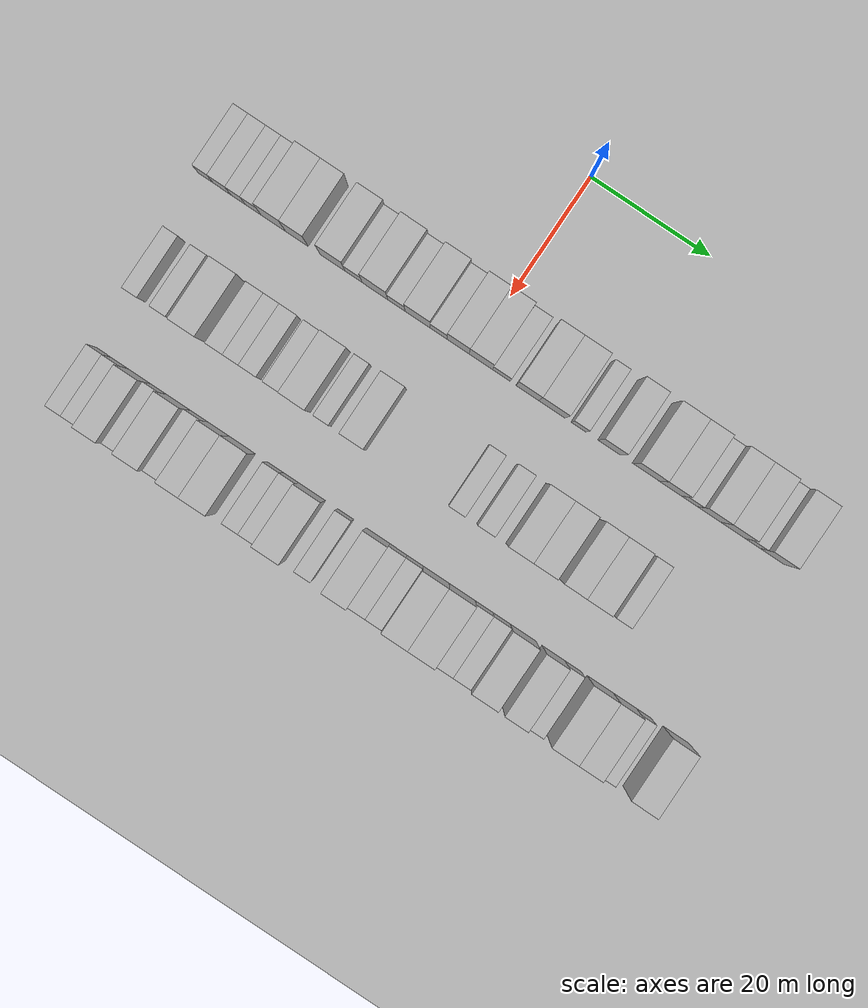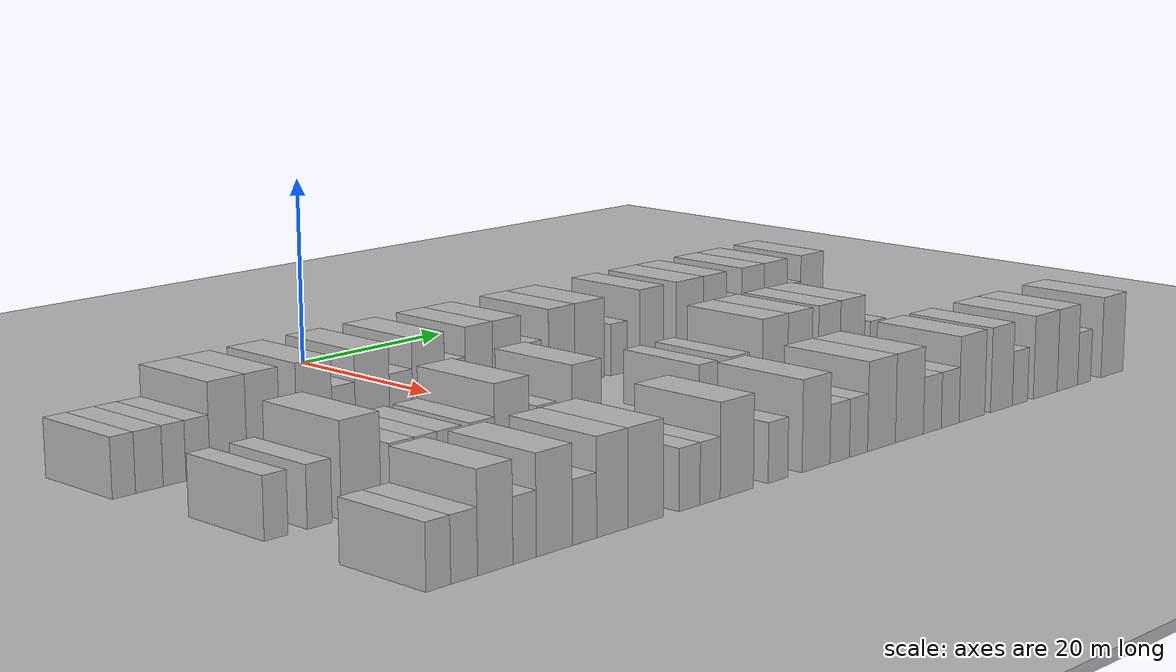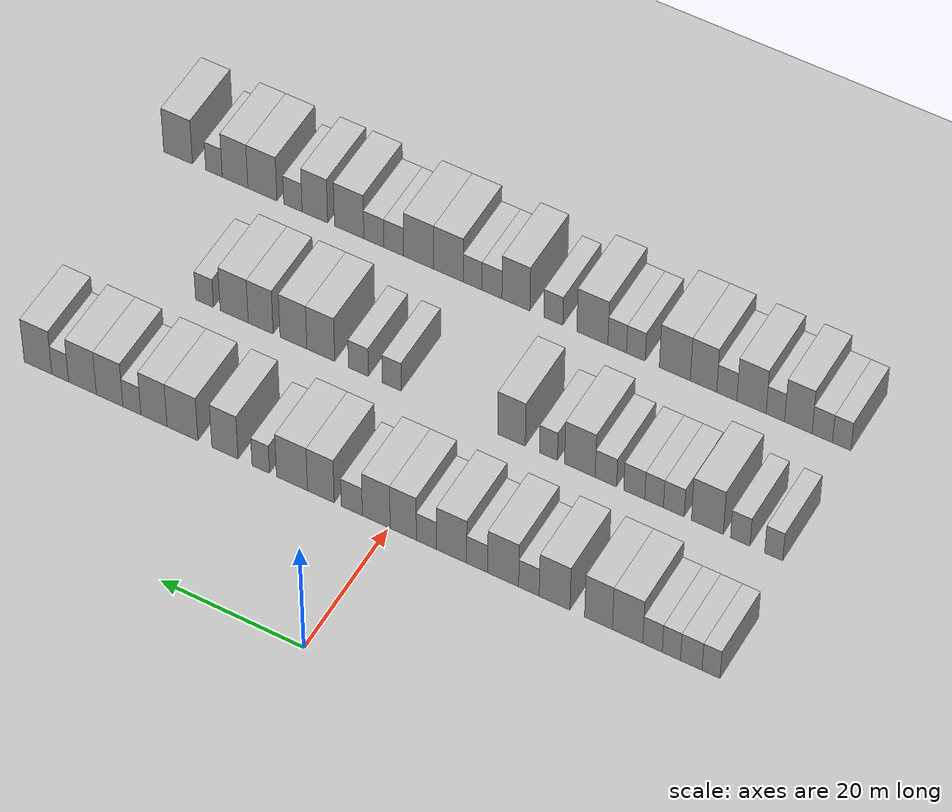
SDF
<sdf version="1.6">
 <world name="default">
  <include><name>ground_plane_1</name><uri>model://HANNAS_ground_plane</uri></include>
  <include>
   <name>ground_plane_2</name>
   <uri>model://HANNAS_ground_plane</uri>
   <pose>100 0 0  0 0 0</pose>
  </include>
  <model name="building_46">
   <static>1</static>
   <pose>25.0000 -44.2647 0 0.000000 0.000000 0.000000</pose>
   <link name="link">
    <pose>0 0 3.00 0 0 0</pose>
    <collision name="collision"><geometry><box><size>10.0000 2.4117 6.0000</size></box></geometry></collision>
    <visual name="visual">
     <cast_shadows>0</cast_shadows>
     <geometry><box><size>10.0000 2.4117 6.0000</size></box></geometry>
     <material>
      <script>
       <uri>model://HANNAS_wall/materials/scripts</uri>
       <uri>model://HANNAS_wall/materials/textures</uri>
       <name>vrc/HANNAS_wall</name>
      </script>
     </material>
    </visual>
   </link>
  </model>
  <model name="building_47">
   <static>1</static>
   <pose>25.0000 -41.6088 0 0.000000 0.000000 0.000000</pose>
   <link name="link">
    <pose>0 0 3.00 0 0 0</pose>
    <collision name="collision"><geometry><box><size>10.0000 2.9002 6.0000</size></box></geometry></collision>
    <visual name="visual">
     <cast_shadows>0</cast_shadows>
     <geometry><box><size>10.0000 2.9002 6.0000</size></box></geometry>
     <material>
      <script>
       <uri>model://HANNAS_wall/materials/scripts</uri>
       <uri>model://HANNAS_wall/materials/textures</uri>
       <name>vrc/HANNAS_wall</name>
      </script>
     </material>
    </visual>
   </link>
  </model>
  <model name="building_48">
   <static>1</static>
   <pose>25.0000 -38.9395 0 0.000000 0.000000 0.000000</pose>
   <link name="link">
    <pose>0 0 3.00 0 0 0</pose>
    <collision name="collision"><geometry><box><size>10.0000 2.4383 6.0000</size></box></geometry></collision>
    <visual name="visual">
     <cast_shadows>0</cast_shadows>
     <geometry><box><size>10.0000 2.4383 6.0000</size></box></geometry>
     <material>
      <script>
       <uri>model://HANNAS_wall/materials/scripts</uri>
       <uri>model://HANNAS_wall/materials/textures</uri>
       <name>vrc/HANNAS_wall</name>
      </script>
     </material>
    </visual>
   </link>
  </model>
  <model name="building_49">
   <static>1</static>
   <pose>25.0000 -36.4089 0 0.000000 0.000000 0.000000</pose>
   <link name="link">
    <pose>0 0 3.00 0 0 0</pose>
    <collision name="collision"><geometry><box><size>10.0000 2.6229 6.0000</size></box></geometry></collision>
    <visual name="visual">
     <cast_shadows>0</cast_shadows>
     <geometry><box><size>10.0000 2.6229 6.0000</size></box></geometry>
     <material>
      <script>
       <uri>model://HANNAS_wall/materials/scripts</uri>
       <uri>model://HANNAS_wall/materials/textures</uri>
       <name>vrc/HANNAS_wall</name>
      </script>
     </material>
    </visual>
   </link>
  </model>
  <model name="building_50">
   <static>1</static>
   <pose>25.0000 -33.0423 0 0.000000 0.000000 0.000000</pose>
   <link name="link">
    <pose>0 0 4.50 0 0 0</pose>
    <collision name="collision"><geometry><box><size>10.0000 4.1103 9.0000</size></box></geometry></collision>
    <visual name="visual">
     <cast_shadows>0</cast_shadows>
     <geometry><box><size>10.0000 4.1103 9.0000</size></box></geometry>
     <material>
      <script>
       <uri>model://HANNAS_wall/materials/scripts</uri>
       <uri>model://HANNAS_wall/materials/textures</uri>
       <name>vrc/HANNAS_wall</name>
      </script>
     </material>
    </visual>
   </link>
  </model>
  <model name="building_51">
   <static>1</static>
   <pose>25.0000 -29.1013 0 0.000000 0.000000 0.000000</pose>
   <link name="link">
    <pose>0 0 4.50 0 0 0</pose>
    <collision name="collision"><geometry><box><size>10.0000 3.7718 9.0000</size></box></geometry></collision>
    <visual name="visual">
     <cast_shadows>0</cast_shadows>
     <geometry><box><size>10.0000 3.7718 9.0000</size></box></geometry>
     <material>
      <script>
       <uri>model://HANNAS_wall/materials/scripts</uri>
       <uri>model://HANNAS_wall/materials/textures</uri>
       <name>vrc/HANNAS_wall</name>
      </script>
     </material>
    </visual>
   </link>
  </model>
  <model name="building_52">
   <static>1</static>
   <pose>25.0000 -23.1156 0 0.000000 0.000000 0.000000</pose>
   <link name="link">
    <pose>0 0 4.50 0 0 0</pose>
    <collision name="collision"><geometry><box><size>10.0000 4.1995 9.0000</size></box></geometry></collision>
    <visual name="visual">
     <cast_shadows>0</cast_shadows>
     <geometry><box><size>10.0000 4.1995 9.0000</size></box></geometry>
     <material>
      <script>
       <uri>model://HANNAS_wall/materials/scripts</uri>
       <uri>model://HANNAS_wall/materials/textures</uri>
       <name>vrc/HANNAS_wall</name>
      </script>
     </material>
    </visual>
   </link>
  </model>
  <model name="building_53">
   <static>1</static>
   <pose>25.0000 -19.6081 0 0.000000 0.000000 0.000000</pose>
   <link name="link">
    <pose>0 0 3.00 0 0 0</pose>
    <collision name="collision"><geometry><box><size>10.0000 2.8155 6.0000</size></box></geometry></collision>
    <visual name="visual">
     <cast_shadows>0</cast_shadows>
     <geometry><box><size>10.0000 2.8155 6.0000</size></box></geometry>
     <material>
      <script>
       <uri>model://HANNAS_wall/materials/scripts</uri>
       <uri>model://HANNAS_wall/materials/textures</uri>
       <name>vrc/HANNAS_wall</name>
      </script>
     </material>
    </visual>
   </link>
  </model>
  <model name="building_54">
   <static>1</static>
   <pose>25.0000 -16.0701 0 0.000000 0.000000 0.000000</pose>
   <link name="link">
    <pose>0 0 4.50 0 0 0</pose>
    <collision name="collision"><geometry><box><size>10.0000 4.2606 9.0000</size></box></geometry></collision>
    <visual name="visual">
     <cast_shadows>0</cast_shadows>
     <geometry><box><size>10.0000 4.2606 9.0000</size></box></geometry>
     <material>
      <script>
       <uri>model://HANNAS_wall/materials/scripts</uri>
       <uri>model://HANNAS_wall/materials/textures</uri>
       <name>vrc/HANNAS_wall</name>
      </script>
     </material>
    </visual>
   </link>
  </model>
  <model name="building_55">
   <static>1</static>
   <pose>25.0000 -12.4881 0 0.000000 0.000000 0.000000</pose>
   <link name="link">
    <pose>0 0 3.00 0 0 0</pose>
    <collision name="collision"><geometry><box><size>10.0000 2.9033 6.0000</size></box></geometry></collision>
    <visual name="visual">
     <cast_shadows>0</cast_shadows>
     <geometry><box><size>10.0000 2.9033 6.0000</size></box></geometry>
     <material>
      <script>
       <uri>model://HANNAS_wall/materials/scripts</uri>
       <uri>model://HANNAS_wall/materials/textures</uri>
       <name>vrc/HANNAS_wall</name>
      </script>
     </material>
    </visual>
   </link>
  </model>
  <model name="building_56">
   <static>1</static>
   <pose>25.0000 -8.9451 0 0.000000 0.000000 0.000000</pose>
   <link name="link">
    <pose>0 0 4.50 0 0 0</pose>
    <collision name="collision"><geometry><box><size>10.0000 4.1829 9.0000</size></box></geometry></collision>
    <visual name="visual">
     <cast_shadows>0</cast_shadows>
     <geometry><box><size>10.0000 4.1829 9.0000</size></box></geometry>
     <material>
      <script>
       <uri>model://HANNAS_wall/materials/scripts</uri>
       <uri>model://HANNAS_wall/materials/textures</uri>
       <name>vrc/HANNAS_wall</name>
      </script>
     </material>
    </visual>
   </link>
  </model>
  <model name="building_57">
   <static>1</static>
   <pose>25.0000 -5.4550 0 0.000000 0.000000 0.000000</pose>
   <link name="link">
    <pose>0 0 3.00 0 0 0</pose>
    <collision name="collision"><geometry><box><size>10.0000 2.7972 6.0000</size></box></geometry></collision>
    <visual name="visual">
     <cast_shadows>0</cast_shadows>
     <geometry><box><size>10.0000 2.7972 6.0000</size></box></geometry>
     <material>
      <script>
       <uri>model://HANNAS_wall/materials/scripts</uri>
       <uri>model://HANNAS_wall/materials/textures</uri>
       <name>vrc/HANNAS_wall</name>
      </script>
     </material>
    </visual>
   </link>
  </model>
  <model name="building_58">
   <static>1</static>
   <pose>25.0000 -2.2217 0 0.000000 0.000000 0.000000</pose>
   <link name="link">
    <pose>0 0 4.50 0 0 0</pose>
    <collision name="collision"><geometry><box><size>10.0000 3.6695 9.0000</size></box></geometry></collision>
    <visual name="visual">
     <cast_shadows>0</cast_shadows>
     <geometry><box><size>10.0000 3.6695 9.0000</size></box></geometry>
     <material>
      <script>
       <uri>model://HANNAS_wall/materials/scripts</uri>
       <uri>model://HANNAS_wall/materials/textures</uri>
       <name>vrc/HANNAS_wall</name>
      </script>
     </material>
    </visual>
   </link>
  </model>
  <model name="building_59">
   <static>1</static>
   <pose>25.0000 1.5626 0 0.000000 0.000000 0.000000</pose>
   <link name="link">
    <pose>0 0 4.50 0 0 0</pose>
    <collision name="collision"><geometry><box><size>10.0000 3.8991 9.0000</size></box></geometry></collision>
    <visual name="visual">
     <cast_shadows>0</cast_shadows>
     <geometry><box><size>10.0000 3.8991 9.0000</size></box></geometry>
     <material>
      <script>
       <uri>model://HANNAS_wall/materials/scripts</uri>
       <uri>model://HANNAS_wall/materials/textures</uri>
       <name>vrc/HANNAS_wall</name>
      </script>
     </material>
    </visual>
   </link>
  </model>
  <model name="building_60">
   <static>1</static>
   <pose>25.0000 4.9866 0 0.000000 0.000000 0.000000</pose>
   <link name="link">
    <pose>0 0 3.00 0 0 0</pose>
    <collision name="collision"><geometry><box><size>10.0000 2.9490 6.0000</size></box></geometry></collision>
    <visual name="visual">
     <cast_shadows>0</cast_shadows>
     <geometry><box><size>10.0000 2.9490 6.0000</size></box></geometry>
     <material>
      <script>
       <uri>model://HANNAS_wall/materials/scripts</uri>
       <uri>model://HANNAS_wall/materials/textures</uri>
       <name>vrc/HANNAS_wall</name>
      </script>
     </material>
    </visual>
   </link>
  </model>
  <model name="building_61">
   <static>1</static>
   <pose>25.0000 9.3495 0 0.000000 0.000000 0.000000</pose>
   <link name="link">
    <pose>0 0 4.50 0 0 0</pose>
    <collision name="collision"><geometry><box><size>10.0000 3.7767 9.0000</size></box></geometry></collision>
    <visual name="visual">
     <cast_shadows>0</cast_shadows>
     <geometry><box><size>10.0000 3.7767 9.0000</size></box></geometry>
     <material>
      <script>
       <uri>model://HANNAS_wall/materials/scripts</uri>
       <uri>model://HANNAS_wall/materials/textures</uri>
       <name>vrc/HANNAS_wall</name>
      </script>
     </material>
    </visual>
   </link>
  </model>
  <model name="building_62">
   <static>1</static>
   <pose>25.0000 13.4382 0 0.000000 0.000000 0.000000</pose>
   <link name="link">
    <pose>0 0 4.50 0 0 0</pose>
    <collision name="collision"><geometry><box><size>10.0000 4.4008 9.0000</size></box></geometry></collision>
    <visual name="visual">
     <cast_shadows>0</cast_shadows>
     <geometry><box><size>10.0000 4.4008 9.0000</size></box></geometry>
     <material>
      <script>
       <uri>model://HANNAS_wall/materials/scripts</uri>
       <uri>model://HANNAS_wall/materials/textures</uri>
       <name>vrc/HANNAS_wall</name>
      </script>
     </material>
    </visual>
   </link>
  </model>
  <model name="building_63">
   <static>1</static>
   <pose>25.0000 17.8785 0 0.000000 0.000000 0.000000</pose>
   <link name="link">
    <pose>0 0 3.00 0 0 0</pose>
    <collision name="collision"><geometry><box><size>10.0000 2.4797 6.0000</size></box></geometry></collision>
    <visual name="visual">
     <cast_shadows>0</cast_shadows>
     <geometry><box><size>10.0000 2.4797 6.0000</size></box></geometry>
     <material>
      <script>
       <uri>model://HANNAS_wall/materials/scripts</uri>
       <uri>model://HANNAS_wall/materials/textures</uri>
       <name>vrc/HANNAS_wall</name>
      </script>
     </material>
    </visual>
   </link>
  </model>
  <model name="building_64">
   <static>1</static>
   <pose>25.0000 23.0004 0 0.000000 0.000000 0.000000</pose>
   <link name="link">
    <pose>0 0 4.50 0 0 0</pose>
    <collision name="collision"><geometry><box><size>10.0000 3.7641 9.0000</size></box></geometry></collision>
    <visual name="visual">
     <cast_shadows>0</cast_shadows>
     <geometry><box><size>10.0000 3.7641 9.0000</size></box></geometry>
     <material>
      <script>
       <uri>model://HANNAS_wall/materials/scripts</uri>
       <uri>model://HANNAS_wall/materials/textures</uri>
       <name>vrc/HANNAS_wall</name>
      </script>
     </material>
    </visual>
   </link>
  </model>
  <model name="building_65">
   <static>1</static>
   <pose>25.0000 29.1092 0 0.000000 0.000000 0.000000</pose>
   <link name="link">
    <pose>0 0 4.50 0 0 0</pose>
    <collision name="collision"><geometry><box><size>10.0000 4.4535 9.0000</size></box></geometry></collision>
    <visual name="visual">
     <cast_shadows>0</cast_shadows>
     <geometry><box><size>10.0000 4.4535 9.0000</size></box></geometry>
     <material>
      <script>
       <uri>model://HANNAS_wall/materials/scripts</uri>
       <uri>model://HANNAS_wall/materials/textures</uri>
       <name>vrc/HANNAS_wall</name>
      </script>
     </material>
    </visual>
   </link>
  </model>
  <model name="building_66">
   <static>1</static>
   <pose>25.0000 33.2260 0 0.000000 0.000000 0.000000</pose>
   <link name="link">
    <pose>0 0 4.50 0 0 0</pose>
    <collision name="collision"><geometry><box><size>10.0000 3.7800 9.0000</size></box></geometry></collision>
    <visual name="visual">
     <cast_shadows>0</cast_shadows>
     <geometry><box><size>10.0000 3.7800 9.0000</size></box></geometry>
     <material>
      <script>
       <uri>model://HANNAS_wall/materials/scripts</uri>
       <uri>model://HANNAS_wall/materials/textures</uri>
       <name>vrc/HANNAS_wall</name>
      </script>
     </material>
    </visual>
   </link>
  </model>
  <model name="building_67">
   <static>1</static>
   <pose>25.0000 36.4214 0 0.000000 0.000000 0.000000</pose>
   <link name="link">
    <pose>0 0 3.00 0 0 0</pose>
    <collision name="collision"><geometry><box><size>10.0000 2.6108 6.0000</size></box></geometry></collision>
    <visual name="visual">
     <cast_shadows>0</cast_shadows>
     <geometry><box><size>10.0000 2.6108 6.0000</size></box></geometry>
     <material>
      <script>
       <uri>model://HANNAS_wall/materials/scripts</uri>
       <uri>model://HANNAS_wall/materials/textures</uri>
       <name>vrc/HANNAS_wall</name>
      </script>
     </material>
    </visual>
   </link>
  </model>
  <model name="building_68">
   <static>1</static>
   <pose>25.0000 39.6642 0 0.000000 0.000000 0.000000</pose>
   <link name="link">
    <pose>0 0 4.50 0 0 0</pose>
    <collision name="collision"><geometry><box><size>10.0000 3.8748 9.0000</size></box></geometry></collision>
    <visual name="visual">
     <cast_shadows>0</cast_shadows>
     <geometry><box><size>10.0000 3.8748 9.0000</size></box></geometry>
     <material>
      <script>
       <uri>model://HANNAS_wall/materials/scripts</uri>
       <uri>model://HANNAS_wall/materials/textures</uri>
       <name>vrc/HANNAS_wall</name>
      </script>
     </material>
    </visual>
   </link>
  </model>
  <model name="building_69">
   <static>1</static>
   <pose>25.0000 43.6340 0 0.000000 0.000000 0.000000</pose>
   <link name="link">
    <pose>0 0 4.50 0 0 0</pose>
    <collision name="collision"><geometry><box><size>10.0000 4.0647 9.0000</size></box></geometry></collision>
    <visual name="visual">
     <cast_shadows>0</cast_shadows>
     <geometry><box><size>10.0000 4.0647 9.0000</size></box></geometry>
     <material>
      <script>
       <uri>model://HANNAS_wall/materials/scripts</uri>
       <uri>model://HANNAS_wall/materials/textures</uri>
       <name>vrc/HANNAS_wall</name>
      </script>
     </material>
    </visual>
   </link>
  </model>
  <model name="building_70">
   <static>1</static>
   <pose>25.0000 46.8919 0 0.000000 0.000000 0.000000</pose>
   <link name="link">
    <pose>0 0 3.00 0 0 0</pose>
    <collision name="collision"><geometry><box><size>10.0000 2.4511 6.0000</size></box></geometry></collision>
    <visual name="visual">
     <cast_shadows>0</cast_shadows>
     <geometry><box><size>10.0000 2.4511 6.0000</size></box></geometry>
     <material>
      <script>
       <uri>model://HANNAS_wall/materials/scripts</uri>
       <uri>model://HANNAS_wall/materials/textures</uri>
       <name>vrc/HANNAS_wall</name>
      </script>
     </material>
    </visual>
   </link>
  </model>
  <model name="building_71">
   <static>1</static>
   <pose>25.0000 50.1538 0 0.000000 0.000000 0.000000</pose>
   <link name="link">
    <pose>0 0 4.50 0 0 0</pose>
    <collision name="collision"><geometry><box><size>10.0000 4.0727 9.0000</size></box></geometry></collision>
    <visual name="visual">
     <cast_shadows>0</cast_shadows>
     <geometry><box><size>10.0000 4.0727 9.0000</size></box></geometry>
     <material>
      <script>
       <uri>model://HANNAS_wall/materials/scripts</uri>
       <uri>model://HANNAS_wall/materials/textures</uri>
       <name>vrc/HANNAS_wall</name>
      </script>
     </material>
    </visual>
   </link>
  </model>
  <model name="building_162">
   <static>1</static>
   <pose>44.0000 -42.9422 0 0.000000 0.000000 0.000000</pose>
   <link name="link">
    <pose>0 0 3.00 0 0 0</pose>
    <collision name="collision"><geometry><box><size>10.0000 2.4585 6.0000</size></box></geometry></collision>
    <visual name="visual">
     <cast_shadows>0</cast_shadows>
     <geometry><box><size>10.0000 2.4585 6.0000</size></box></geometry>
     <material>
      <script>
       <uri>model://HANNAS_wall/materials/scripts</uri>
       <uri>model://HANNAS_wall/materials/textures</uri>
       <name>vrc/HANNAS_wall</name>
      </script>
     </material>
    </visual>
   </link>
  </model>
  <model name="building_163">
   <static>1</static>
   <pose>44.0000 -38.3924 0 0.000000 0.000000 0.000000</pose>
   <link name="link">
    <pose>0 0 3.00 0 0 0</pose>
    <collision name="collision"><geometry><box><size>10.0000 2.6411 6.0000</size></box></geometry></collision>
    <visual name="visual">
     <cast_shadows>0</cast_shadows>
     <geometry><box><size>10.0000 2.6411 6.0000</size></box></geometry>
     <material>
      <script>
       <uri>model://HANNAS_wall/materials/scripts</uri>
       <uri>model://HANNAS_wall/materials/textures</uri>
       <name>vrc/HANNAS_wall</name>
      </script>
     </material>
    </visual>
   </link>
  </model>
  <model name="building_164">
   <static>1</static>
   <pose>44.0000 -33.8953 0 0.000000 0.000000 0.000000</pose>
   <link name="link">
    <pose>0 0 4.50 0 0 0</pose>
    <collision name="collision"><geometry><box><size>10.0000 4.3532 9.0000</size></box></geometry></collision>
    <visual name="visual">
     <cast_shadows>0</cast_shadows>
     <geometry><box><size>10.0000 4.3532 9.0000</size></box></geometry>
     <material>
      <script>
       <uri>model://HANNAS_wall/materials/scripts</uri>
       <uri>model://HANNAS_wall/materials/textures</uri>
       <name>vrc/HANNAS_wall</name>
      </script>
     </material>
    </visual>
   </link>
  </model>
  <model name="building_165">
   <static>1</static>
   <pose>44.0000 -29.2951 0 0.000000 0.000000 0.000000</pose>
   <link name="link">
    <pose>0 0 3.00 0 0 0</pose>
    <collision name="collision"><geometry><box><size>10.0000 2.8470 6.0000</size></box></geometry></collision>
    <visual name="visual">
     <cast_shadows>0</cast_shadows>
     <geometry><box><size>10.0000 2.8470 6.0000</size></box></geometry>
     <material>
      <script>
       <uri>model://HANNAS_wall/materials/scripts</uri>
       <uri>model://HANNAS_wall/materials/textures</uri>
       <name>vrc/HANNAS_wall</name>
      </script>
     </material>
    </visual>
   </link>
  </model>
  <model name="building_166">
   <static>1</static>
   <pose>44.0000 -26.5830 0 0.000000 0.000000 0.000000</pose>
   <link name="link">
    <pose>0 0 3.00 0 0 0</pose>
    <collision name="collision"><geometry><box><size>10.0000 2.5772 6.0000</size></box></geometry></collision>
    <visual name="visual">
     <cast_shadows>0</cast_shadows>
     <geometry><box><size>10.0000 2.5772 6.0000</size></box></geometry>
     <material>
      <script>
       <uri>model://HANNAS_wall/materials/scripts</uri>
       <uri>model://HANNAS_wall/materials/textures</uri>
       <name>vrc/HANNAS_wall</name>
      </script>
     </material>
    </visual>
   </link>
  </model>
  <model name="building_167">
   <static>1</static>
   <pose>44.0000 -23.8454 0 0.000000 0.000000 0.000000</pose>
   <link name="link">
    <pose>0 0 3.00 0 0 0</pose>
    <collision name="collision"><geometry><box><size>10.0000 2.8980 6.0000</size></box></geometry></collision>
    <visual name="visual">
     <cast_shadows>0</cast_shadows>
     <geometry><box><size>10.0000 2.8980 6.0000</size></box></geometry>
     <material>
      <script>
       <uri>model://HANNAS_wall/materials/scripts</uri>
       <uri>model://HANNAS_wall/materials/textures</uri>
       <name>vrc/HANNAS_wall</name>
      </script>
     </material>
    </visual>
   </link>
  </model>
  <model name="building_168">
   <static>1</static>
   <pose>44.0000 -19.9086 0 0.000000 0.000000 0.000000</pose>
   <link name="link">
    <pose>0 0 3.00 0 0 0</pose>
    <collision name="collision"><geometry><box><size>10.0000 2.9757 6.0000</size></box></geometry></collision>
    <visual name="visual">
     <cast_shadows>0</cast_shadows>
     <geometry><box><size>10.0000 2.9757 6.0000</size></box></geometry>
     <material>
      <script>
       <uri>model://HANNAS_wall/materials/scripts</uri>
       <uri>model://HANNAS_wall/materials/textures</uri>
       <name>vrc/HANNAS_wall</name>
      </script>
     </material>
    </visual>
   </link>
  </model>
  <model name="building_169">
   <static>1</static>
   <pose>44.0000 -16.2926 0 0.000000 0.000000 0.000000</pose>
   <link name="link">
    <pose>0 0 4.50 0 0 0</pose>
    <collision name="collision"><geometry><box><size>10.0000 4.2563 9.0000</size></box></geometry></collision>
    <visual name="visual">
     <cast_shadows>0</cast_shadows>
     <geometry><box><size>10.0000 4.2563 9.0000</size></box></geometry>
     <material>
      <script>
       <uri>model://HANNAS_wall/materials/scripts</uri>
       <uri>model://HANNAS_wall/materials/textures</uri>
       <name>vrc/HANNAS_wall</name>
      </script>
     </material>
    </visual>
   </link>
  </model>
  <model name="building_170">
   <static>1</static>
   <pose>44.0000 -11.9140 0 0.000000 0.000000 0.000000</pose>
   <link name="link">
    <pose>0 0 3.00 0 0 0</pose>
    <collision name="collision"><geometry><box><size>10.0000 2.5010 6.0000</size></box></geometry></collision>
    <visual name="visual">
     <cast_shadows>0</cast_shadows>
     <geometry><box><size>10.0000 2.5010 6.0000</size></box></geometry>
     <material>
      <script>
       <uri>model://HANNAS_wall/materials/scripts</uri>
       <uri>model://HANNAS_wall/materials/textures</uri>
       <name>vrc/HANNAS_wall</name>
      </script>
     </material>
    </visual>
   </link>
  </model>
  <model name="building_171">
   <static>1</static>
   <pose>44.0000 -6.7311 0 0.000000 0.000000 0.000000</pose>
   <link name="link">
    <pose>0 0 4.50 0 0 0</pose>
    <collision name="collision"><geometry><box><size>10.0000 3.8649 9.0000</size></box></geometry></collision>
    <visual name="visual">
     <cast_shadows>0</cast_shadows>
     <geometry><box><size>10.0000 3.8649 9.0000</size></box></geometry>
     <material>
      <script>
       <uri>model://HANNAS_wall/materials/scripts</uri>
       <uri>model://HANNAS_wall/materials/textures</uri>
       <name>vrc/HANNAS_wall</name>
      </script>
     </material>
    </visual>
   </link>
  </model>
  <model name="building_172">
   <static>1</static>
   <pose>44.0000 10.2543 0 0.000000 0.000000 0.000000</pose>
   <link name="link">
    <pose>0 0 3.00 0 0 0</pose>
    <collision name="collision"><geometry><box><size>10.0000 2.7019 6.0000</size></box></geometry></collision>
    <visual name="visual">
     <cast_shadows>0</cast_shadows>
     <geometry><box><size>10.0000 2.7019 6.0000</size></box></geometry>
     <material>
      <script>
       <uri>model://HANNAS_wall/materials/scripts</uri>
       <uri>model://HANNAS_wall/materials/textures</uri>
       <name>vrc/HANNAS_wall</name>
      </script>
     </material>
    </visual>
   </link>
  </model>
  <model name="building_173">
   <static>1</static>
   <pose>44.0000 15.0322 0 0.000000 0.000000 0.000000</pose>
   <link name="link">
    <pose>0 0 3.00 0 0 0</pose>
    <collision name="collision"><geometry><box><size>10.0000 2.8540 6.0000</size></box></geometry></collision>
    <visual name="visual">
     <cast_shadows>0</cast_shadows>
     <geometry><box><size>10.0000 2.8540 6.0000</size></box></geometry>
     <material>
      <script>
       <uri>model://HANNAS_wall/materials/scripts</uri>
       <uri>model://HANNAS_wall/materials/textures</uri>
       <name>vrc/HANNAS_wall</name>
      </script>
     </material>
    </visual>
   </link>
  </model>
  <model name="building_174">
   <static>1</static>
   <pose>44.0000 20.4618 0 0.000000 0.000000 0.000000</pose>
   <link name="link">
    <pose>0 0 4.50 0 0 0</pose>
    <collision name="collision"><geometry><box><size>10.0000 4.0052 9.0000</size></box></geometry></collision>
    <visual name="visual">
     <cast_shadows>0</cast_shadows>
     <geometry><box><size>10.0000 4.0052 9.0000</size></box></geometry>
     <material>
      <script>
       <uri>model://HANNAS_wall/materials/scripts</uri>
       <uri>model://HANNAS_wall/materials/textures</uri>
       <name>vrc/HANNAS_wall</name>
      </script>
     </material>
    </visual>
   </link>
  </model>
  <model name="building_175">
   <static>1</static>
   <pose>44.0000 24.4155 0 0.000000 0.000000 0.000000</pose>
   <link name="link">
    <pose>0 0 4.50 0 0 0</pose>
    <collision name="collision"><geometry><box><size>10.0000 3.9023 9.0000</size></box></geometry></collision>
    <visual name="visual">
     <cast_shadows>0</cast_shadows>
     <geometry><box><size>10.0000 3.9023 9.0000</size></box></geometry>
     <material>
      <script>
       <uri>model://HANNAS_wall/materials/scripts</uri>
       <uri>model://HANNAS_wall/materials/textures</uri>
       <name>vrc/HANNAS_wall</name>
      </script>
     </material>
    </visual>
   </link>
  </model>
  <model name="building_176">
   <static>1</static>
   <pose>44.0000 29.1864 0 0.000000 0.000000 0.000000</pose>
   <link name="link">
    <pose>0 0 4.50 0 0 0</pose>
    <collision name="collision"><geometry><box><size>10.0000 3.6395 9.0000</size></box></geometry></collision>
    <visual name="visual">
     <cast_shadows>0</cast_shadows>
     <geometry><box><size>10.0000 3.6395 9.0000</size></box></geometry>
     <material>
      <script>
       <uri>model://HANNAS_wall/materials/scripts</uri>
       <uri>model://HANNAS_wall/materials/textures</uri>
       <name>vrc/HANNAS_wall</name>
      </script>
     </material>
    </visual>
   </link>
  </model>
  <model name="building_177">
   <static>1</static>
   <pose>44.0000 33.0621 0 0.000000 0.000000 0.000000</pose>
   <link name="link">
    <pose>0 0 4.50 0 0 0</pose>
    <collision name="collision"><geometry><box><size>10.0000 4.1119 9.0000</size></box></geometry></collision>
    <visual name="visual">
     <cast_shadows>0</cast_shadows>
     <geometry><box><size>10.0000 4.1119 9.0000</size></box></geometry>
     <material>
      <script>
       <uri>model://HANNAS_wall/materials/scripts</uri>
       <uri>model://HANNAS_wall/materials/textures</uri>
       <name>vrc/HANNAS_wall</name>
      </script>
     </material>
    </visual>
   </link>
  </model>
  <model name="building_178">
   <static>1</static>
   <pose>44.0000 37.4210 0 0.000000 0.000000 0.000000</pose>
   <link name="link">
    <pose>0 0 3.00 0 0 0</pose>
    <collision name="collision"><geometry><box><size>10.0000 2.6058 6.0000</size></box></geometry></collision>
    <visual name="visual">
     <cast_shadows>0</cast_shadows>
     <geometry><box><size>10.0000 2.6058 6.0000</size></box></geometry>
     <material>
      <script>
       <uri>model://HANNAS_wall/materials/scripts</uri>
       <uri>model://HANNAS_wall/materials/textures</uri>
       <name>vrc/HANNAS_wall</name>
      </script>
     </material>
    </visual>
   </link>
  </model>
  <model name="building_276">
   <static>1</static>
   <pose>63.0000 -42.6467 0 0.000000 0.000000 0.000000</pose>
   <link name="link">
    <pose>0 0 3.00 0 0 0</pose>
    <collision name="collision"><geometry><box><size>10.0000 2.5381 6.0000</size></box></geometry></collision>
    <visual name="visual">
     <cast_shadows>0</cast_shadows>
     <geometry><box><size>10.0000 2.5381 6.0000</size></box></geometry>
     <material>
      <script>
       <uri>model://HANNAS_wall/materials/scripts</uri>
       <uri>model://HANNAS_wall/materials/textures</uri>
       <name>vrc/HANNAS_wall</name>
      </script>
     </material>
    </visual>
   </link>
  </model>
  <model name="building_277">
   <static>1</static>
   <pose>63.0000 -39.9706 0 0.000000 0.000000 0.000000</pose>
   <link name="link">
    <pose>0 0 3.00 0 0 0</pose>
    <collision name="collision"><geometry><box><size>10.0000 2.8140 6.0000</size></box></geometry></collision>
    <visual name="visual">
     <cast_shadows>0</cast_shadows>
     <geometry><box><size>10.0000 2.8140 6.0000</size></box></geometry>
     <material>
      <script>
       <uri>model://HANNAS_wall/materials/scripts</uri>
       <uri>model://HANNAS_wall/materials/textures</uri>
       <name>vrc/HANNAS_wall</name>
      </script>
     </material>
    </visual>
   </link>
  </model>
  <model name="building_278">
   <static>1</static>
   <pose>63.0000 -36.6678 0 0.000000 0.000000 0.000000</pose>
   <link name="link">
    <pose>0 0 4.50 0 0 0</pose>
    <collision name="collision"><geometry><box><size>10.0000 3.7916 9.0000</size></box></geometry></collision>
    <visual name="visual">
     <cast_shadows>0</cast_shadows>
     <geometry><box><size>10.0000 3.7916 9.0000</size></box></geometry>
     <material>
      <script>
       <uri>model://HANNAS_wall/materials/scripts</uri>
       <uri>model://HANNAS_wall/materials/textures</uri>
       <name>vrc/HANNAS_wall</name>
      </script>
     </material>
    </visual>
   </link>
  </model>
  <model name="building_279">
   <static>1</static>
   <pose>63.0000 -33.4888 0 0.000000 0.000000 0.000000</pose>
   <link name="link">
    <pose>0 0 3.00 0 0 0</pose>
    <collision name="collision"><geometry><box><size>10.0000 2.5664 6.0000</size></box></geometry></collision>
    <visual name="visual">
     <cast_shadows>0</cast_shadows>
     <geometry><box><size>10.0000 2.5664 6.0000</size></box></geometry>
     <material>
      <script>
       <uri>model://HANNAS_wall/materials/scripts</uri>
       <uri>model://HANNAS_wall/materials/textures</uri>
       <name>vrc/HANNAS_wall</name>
      </script>
     </material>
    </visual>
   </link>
  </model>
  <model name="building_280">
   <static>1</static>
   <pose>63.0000 -30.1717 0 0.000000 0.000000 0.000000</pose>
   <link name="link">
    <pose>0 0 4.50 0 0 0</pose>
    <collision name="collision"><geometry><box><size>10.0000 4.0678 9.0000</size></box></geometry></collision>
    <visual name="visual">
     <cast_shadows>0</cast_shadows>
     <geometry><box><size>10.0000 4.0678 9.0000</size></box></geometry>
     <material>
      <script>
       <uri>model://HANNAS_wall/materials/scripts</uri>
       <uri>model://HANNAS_wall/materials/textures</uri>
       <name>vrc/HANNAS_wall</name>
      </script>
     </material>
    </visual>
   </link>
  </model>
  <model name="building_281">
   <static>1</static>
   <pose>63.0000 -26.7349 0 0.000000 0.000000 0.000000</pose>
   <link name="link">
    <pose>0 0 3.00 0 0 0</pose>
    <collision name="collision"><geometry><box><size>10.0000 2.8056 6.0000</size></box></geometry></collision>
    <visual name="visual">
     <cast_shadows>0</cast_shadows>
     <geometry><box><size>10.0000 2.8056 6.0000</size></box></geometry>
     <material>
      <script>
       <uri>model://HANNAS_wall/materials/scripts</uri>
       <uri>model://HANNAS_wall/materials/textures</uri>
       <name>vrc/HANNAS_wall</name>
      </script>
     </material>
    </visual>
   </link>
  </model>
  <model name="building_282">
   <static>1</static>
   <pose>63.0000 -23.4875 0 0.000000 0.000000 0.000000</pose>
   <link name="link">
    <pose>0 0 4.50 0 0 0</pose>
    <collision name="collision"><geometry><box><size>10.0000 3.6893 9.0000</size></box></geometry></collision>
    <visual name="visual">
     <cast_shadows>0</cast_shadows>
     <geometry><box><size>10.0000 3.6893 9.0000</size></box></geometry>
     <material>
      <script>
       <uri>model://HANNAS_wall/materials/scripts</uri>
       <uri>model://HANNAS_wall/materials/textures</uri>
       <name>vrc/HANNAS_wall</name>
      </script>
     </material>
    </visual>
   </link>
  </model>
  <model name="building_283">
   <static>1</static>
   <pose>63.0000 -19.4679 0 0.000000 0.000000 0.000000</pose>
   <link name="link">
    <pose>0 0 4.50 0 0 0</pose>
    <collision name="collision"><geometry><box><size>10.0000 4.3500 9.0000</size></box></geometry></collision>
    <visual name="visual">
     <cast_shadows>0</cast_shadows>
     <geometry><box><size>10.0000 4.3500 9.0000</size></box></geometry>
     <material>
      <script>
       <uri>model://HANNAS_wall/materials/scripts</uri>
       <uri>model://HANNAS_wall/materials/textures</uri>
       <name>vrc/HANNAS_wall</name>
      </script>
     </material>
    </visual>
   </link>
  </model>
  <model name="building_284">
   <static>1</static>
   <pose>63.0000 -13.9698 0 0.000000 0.000000 0.000000</pose>
   <link name="link">
    <pose>0 0 3.00 0 0 0</pose>
    <collision name="collision"><geometry><box><size>10.0000 2.6461 6.0000</size></box></geometry></collision>
    <visual name="visual">
     <cast_shadows>0</cast_shadows>
     <geometry><box><size>10.0000 2.6461 6.0000</size></box></geometry>
     <material>
      <script>
       <uri>model://HANNAS_wall/materials/scripts</uri>
       <uri>model://HANNAS_wall/materials/textures</uri>
       <name>vrc/HANNAS_wall</name>
      </script>
     </material>
    </visual>
   </link>
  </model>
  <model name="building_285">
   <static>1</static>
   <pose>63.0000 -11.3344 0 0.000000 0.000000 0.000000</pose>
   <link name="link">
    <pose>0 0 3.00 0 0 0</pose>
    <collision name="collision"><geometry><box><size>10.0000 2.6249 6.0000</size></box></geometry></collision>
    <visual name="visual">
     <cast_shadows>0</cast_shadows>
     <geometry><box><size>10.0000 2.6249 6.0000</size></box></geometry>
     <material>
      <script>
       <uri>model://HANNAS_wall/materials/scripts</uri>
       <uri>model://HANNAS_wall/materials/textures</uri>
       <name>vrc/HANNAS_wall</name>
      </script>
     </material>
    </visual>
   </link>
  </model>
  <model name="building_286">
   <static>1</static>
   <pose>63.0000 -7.8079 0 0.000000 0.000000 0.000000</pose>
   <link name="link">
    <pose>0 0 4.50 0 0 0</pose>
    <collision name="collision"><geometry><box><size>10.0000 4.4281 9.0000</size></box></geometry></collision>
    <visual name="visual">
     <cast_shadows>0</cast_shadows>
     <geometry><box><size>10.0000 4.4281 9.0000</size></box></geometry>
     <material>
      <script>
       <uri>model://HANNAS_wall/materials/scripts</uri>
       <uri>model://HANNAS_wall/materials/textures</uri>
       <name>vrc/HANNAS_wall</name>
      </script>
     </material>
    </visual>
   </link>
  </model>
  <model name="building_287">
   <static>1</static>
   <pose>63.0000 -2.2358 0 0.000000 0.000000 0.000000</pose>
   <link name="link">
    <pose>0 0 3.00 0 0 0</pose>
    <collision name="collision"><geometry><box><size>10.0000 2.7160 6.0000</size></box></geometry></collision>
    <visual name="visual">
     <cast_shadows>0</cast_shadows>
     <geometry><box><size>10.0000 2.7160 6.0000</size></box></geometry>
     <material>
      <script>
       <uri>model://HANNAS_wall/materials/scripts</uri>
       <uri>model://HANNAS_wall/materials/textures</uri>
       <name>vrc/HANNAS_wall</name>
      </script>
     </material>
    </visual>
   </link>
  </model>
  <model name="building_288">
   <static>1</static>
   <pose>63.0000 3.1276 0 0.000000 0.000000 0.000000</pose>
   <link name="link">
    <pose>0 0 4.50 0 0 0</pose>
    <collision name="collision"><geometry><box><size>10.0000 4.0109 9.0000</size></box></geometry></collision>
    <visual name="visual">
     <cast_shadows>0</cast_shadows>
     <geometry><box><size>10.0000 4.0109 9.0000</size></box></geometry>
     <material>
      <script>
       <uri>model://HANNAS_wall/materials/scripts</uri>
       <uri>model://HANNAS_wall/materials/textures</uri>
       <name>vrc/HANNAS_wall</name>
      </script>
     </material>
    </visual>
   </link>
  </model>
  <model name="building_289">
   <static>1</static>
   <pose>63.0000 6.5701 0 0.000000 0.000000 0.000000</pose>
   <link name="link">
    <pose>0 0 3.00 0 0 0</pose>
    <collision name="collision"><geometry><box><size>10.0000 2.8742 6.0000</size></box></geometry></collision>
    <visual name="visual">
     <cast_shadows>0</cast_shadows>
     <geometry><box><size>10.0000 2.8742 6.0000</size></box></geometry>
     <material>
      <script>
       <uri>model://HANNAS_wall/materials/scripts</uri>
       <uri>model://HANNAS_wall/materials/textures</uri>
       <name>vrc/HANNAS_wall</name>
      </script>
     </material>
    </visual>
   </link>
  </model>
  <model name="building_290">
   <static>1</static>
   <pose>63.0000 9.3671 0 0.000000 0.000000 0.000000</pose>
   <link name="link">
    <pose>0 0 3.00 0 0 0</pose>
    <collision name="collision"><geometry><box><size>10.0000 2.7198 6.0000</size></box></geometry></collision>
    <visual name="visual">
     <cast_shadows>0</cast_shadows>
     <geometry><box><size>10.0000 2.7198 6.0000</size></box></geometry>
     <material>
      <script>
       <uri>model://HANNAS_wall/materials/scripts</uri>
       <uri>model://HANNAS_wall/materials/textures</uri>
       <name>vrc/HANNAS_wall</name>
      </script>
     </material>
    </visual>
   </link>
  </model>
  <model name="building_291">
   <static>1</static>
   <pose>63.0000 12.8630 0 0.000000 0.000000 0.000000</pose>
   <link name="link">
    <pose>0 0 4.50 0 0 0</pose>
    <collision name="collision"><geometry><box><size>10.0000 4.2721 9.0000</size></box></geometry></collision>
    <visual name="visual">
     <cast_shadows>0</cast_shadows>
     <geometry><box><size>10.0000 4.2721 9.0000</size></box></geometry>
     <material>
      <script>
       <uri>model://HANNAS_wall/materials/scripts</uri>
       <uri>model://HANNAS_wall/materials/textures</uri>
       <name>vrc/HANNAS_wall</name>
      </script>
     </material>
    </visual>
   </link>
  </model>
  <model name="building_292">
   <static>1</static>
   <pose>63.0000 17.1972 0 0.000000 0.000000 0.000000</pose>
   <link name="link">
    <pose>0 0 4.50 0 0 0</pose>
    <collision name="collision"><geometry><box><size>10.0000 4.3963 9.0000</size></box></geometry></collision>
    <visual name="visual">
     <cast_shadows>0</cast_shadows>
     <geometry><box><size>10.0000 4.3963 9.0000</size></box></geometry>
     <material>
      <script>
       <uri>model://HANNAS_wall/materials/scripts</uri>
       <uri>model://HANNAS_wall/materials/textures</uri>
       <name>vrc/HANNAS_wall</name>
      </script>
     </material>
    </visual>
   </link>
  </model>
  <model name="building_293">
   <static>1</static>
   <pose>63.0000 20.8455 0 0.000000 0.000000 0.000000</pose>
   <link name="link">
    <pose>0 0 3.00 0 0 0</pose>
    <collision name="collision"><geometry><box><size>10.0000 2.9003 6.0000</size></box></geometry></collision>
    <visual name="visual">
     <cast_shadows>0</cast_shadows>
     <geometry><box><size>10.0000 2.9003 6.0000</size></box></geometry>
     <material>
      <script>
       <uri>model://HANNAS_wall/materials/scripts</uri>
       <uri>model://HANNAS_wall/materials/textures</uri>
       <name>vrc/HANNAS_wall</name>
      </script>
     </material>
    </visual>
   </link>
  </model>
  <model name="building_294">
   <static>1</static>
   <pose>63.0000 23.7582 0 0.000000 0.000000 0.000000</pose>
   <link name="link">
    <pose>0 0 3.00 0 0 0</pose>
    <collision name="collision"><geometry><box><size>10.0000 2.9252 6.0000</size></box></geometry></collision>
    <visual name="visual">
     <cast_shadows>0</cast_shadows>
     <geometry><box><size>10.0000 2.9252 6.0000</size></box></geometry>
     <material>
      <script>
       <uri>model://HANNAS_wall/materials/scripts</uri>
       <uri>model://HANNAS_wall/materials/textures</uri>
       <name>vrc/HANNAS_wall</name>
      </script>
     </material>
    </visual>
   </link>
  </model>
  <model name="building_295">
   <static>1</static>
   <pose>63.0000 27.3802 0 0.000000 0.000000 0.000000</pose>
   <link name="link">
    <pose>0 0 4.50 0 0 0</pose>
    <collision name="collision"><geometry><box><size>10.0000 4.3187 9.0000</size></box></geometry></collision>
    <visual name="visual">
     <cast_shadows>0</cast_shadows>
     <geometry><box><size>10.0000 4.3187 9.0000</size></box></geometry>
     <material>
      <script>
       <uri>model://HANNAS_wall/materials/scripts</uri>
       <uri>model://HANNAS_wall/materials/textures</uri>
       <name>vrc/HANNAS_wall</name>
      </script>
     </material>
    </visual>
   </link>
  </model>
  <model name="building_296">
   <static>1</static>
   <pose>63.0000 32.4354 0 0.000000 0.000000 0.000000</pose>
   <link name="link">
    <pose>0 0 4.50 0 0 0</pose>
    <collision name="collision"><geometry><box><size>10.0000 3.7917 9.0000</size></box></geometry></collision>
    <visual name="visual">
     <cast_shadows>0</cast_shadows>
     <geometry><box><size>10.0000 3.7917 9.0000</size></box></geometry>
     <material>
      <script>
       <uri>model://HANNAS_wall/materials/scripts</uri>
       <uri>model://HANNAS_wall/materials/textures</uri>
       <name>vrc/HANNAS_wall</name>
      </script>
     </material>
    </visual>
   </link>
  </model>
  <model name="building_297">
   <static>1</static>
   <pose>63.0000 35.6929 0 0.000000 0.000000 0.000000</pose>
   <link name="link">
    <pose>0 0 3.00 0 0 0</pose>
    <collision name="collision"><geometry><box><size>10.0000 2.7233 6.0000</size></box></geometry></collision>
    <visual name="visual">
     <cast_shadows>0</cast_shadows>
     <geometry><box><size>10.0000 2.7233 6.0000</size></box></geometry>
     <material>
      <script>
       <uri>model://HANNAS_wall/materials/scripts</uri>
       <uri>model://HANNAS_wall/materials/textures</uri>
       <name>vrc/HANNAS_wall</name>
      </script>
     </material>
    </visual>
   </link>
  </model>
  <model name="building_298">
   <static>1</static>
   <pose>63.0000 40.2312 0 0.000000 0.000000 0.000000</pose>
   <link name="link">
    <pose>0 0 4.50 0 0 0</pose>
    <collision name="collision"><geometry><box><size>10.0000 4.3534 9.0000</size></box></geometry></collision>
    <visual name="visual">
     <cast_shadows>0</cast_shadows>
     <geometry><box><size>10.0000 4.3534 9.0000</size></box></geometry>
     <material>
      <script>
       <uri>model://HANNAS_wall/materials/scripts</uri>
       <uri>model://HANNAS_wall/materials/textures</uri>
       <name>vrc/HANNAS_wall</name>
      </script>
     </material>
    </visual>
   </link>
  </model>
  <model name="building_299">
   <static>1</static>
   <pose>63.0000 44.3310 0 0.000000 0.000000 0.000000</pose>
   <link name="link">
    <pose>0 0 4.50 0 0 0</pose>
    <collision name="collision"><geometry><box><size>10.0000 3.8461 9.0000</size></box></geometry></collision>
    <visual name="visual">
     <cast_shadows>0</cast_shadows>
     <geometry><box><size>10.0000 3.8461 9.0000</size></box></geometry>
     <material>
      <script>
       <uri>model://HANNAS_wall/materials/scripts</uri>
       <uri>model://HANNAS_wall/materials/textures</uri>
       <name>vrc/HANNAS_wall</name>
      </script>
     </material>
    </visual>
   </link>
  </model>
  <model name="building_300">
   <static>1</static>
   <pose>63.0000 47.4841 0 0.000000 0.000000 0.000000</pose>
   <link name="link">
    <pose>0 0 3.00 0 0 0</pose>
    <collision name="collision"><geometry><box><size>10.0000 2.4599 6.0000</size></box></geometry></collision>
    <visual name="visual">
     <cast_shadows>0</cast_shadows>
     <geometry><box><size>10.0000 2.4599 6.0000</size></box></geometry>
     <material>
      <script>
       <uri>model://HANNAS_wall/materials/scripts</uri>
       <uri>model://HANNAS_wall/materials/textures</uri>
       <name>vrc/HANNAS_wall</name>
      </script>
     </material>
    </visual>
   </link>
  </model>
  <model name="building_301">
   <static>1</static>
   <pose>63.0000 52.8827 0 0.000000 0.000000 0.000000</pose>
   <link name="link">
    <pose>0 0 4.50 0 0 0</pose>
    <collision name="collision"><geometry><box><size>10.0000 4.3374 9.0000</size></box></geometry></collision>
    <visual name="visual">
     <cast_shadows>0</cast_shadows>
     <geometry><box><size>10.0000 4.3374 9.0000</size></box></geometry>
     <material>
      <script>
       <uri>model://HANNAS_wall/materials/scripts</uri>
       <uri>model://HANNAS_wall/materials/textures</uri>
       <name>vrc/HANNAS_wall</name>
      </script>
     </material>
    </visual>
   </link>
  </model>
 </world>
</sdf>
